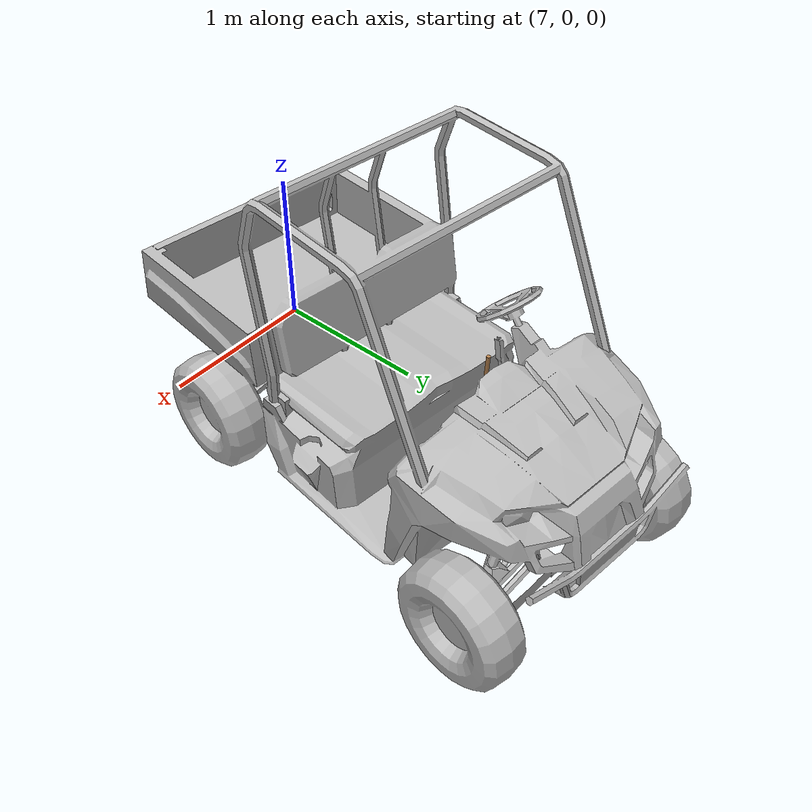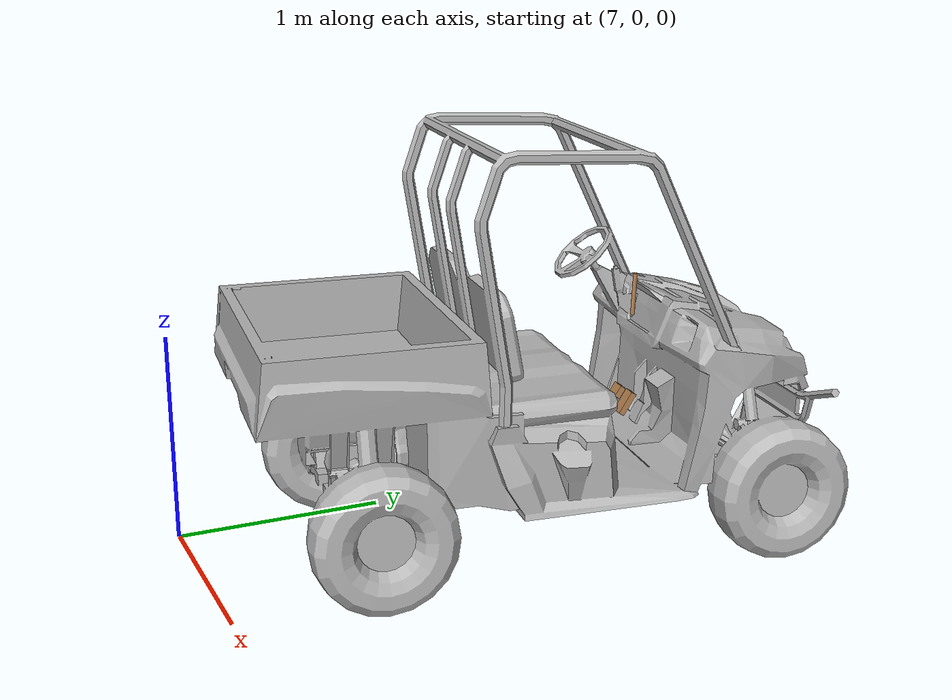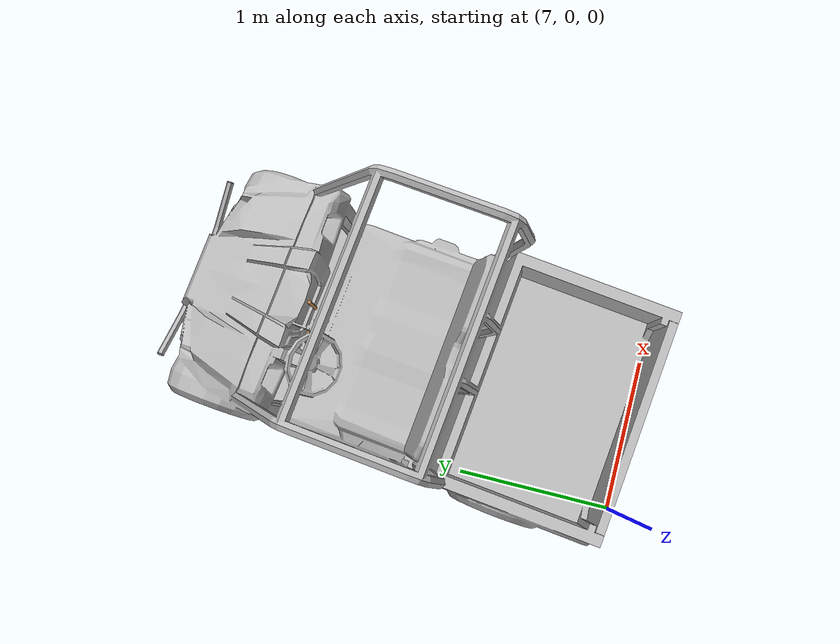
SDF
<sdf version="1.6">
 <world name="default">
  <model name="polaris_ranger_ev_clone_1_clone_clone_clone_clone">
   <static>true</static>
   <link name="chassis">
    <inertial>
     <mass>720</mass>
     <inertia><ixx>140</ixx><ixy>0</ixy><iyy>550</iyy><ixz>0</ixz><iyz>0</iyz><izz>550</izz></inertia>
    </inertial>
    <visual name="visual">
     <pose>0 0 0 0 0 -1.5708</pose>
     <geometry><mesh><uri>model://polaris_ranger_ev/meshes/polaris.dae</uri><scale>1 1 1</scale></mesh></geometry>
     <material>
      <script>
       <uri>model://polaris_ranger_ev/materials/scripts</uri>
       <uri>model://polaris_ranger_ev/materials/textures</uri>
       <name>Polaris/Diffuse</name>
      </script>
     </material>
    </visual>
    <collision name="chassis_bottom">
     <pose>0 0 0.35 0 -0 0</pose>
     <geometry><box><size>2 1 0.1</size></box></geometry>
    </collision>
    <collision name="cargo_bottom">
     <pose>-0.9 0 0.9 0 -0 0</pose>
     <geometry><box><size>0.9 1.2 0.01</size></box></geometry>
    </collision>
    <collision name="cargo_front">
     <pose>-0.45 0 1.025 0 -0 0</pose>
     <geometry><box><size>0.05 1.2 0.25</size></box></geometry>
    </collision>
    <collision name="cargo_back">
     <pose>-1.35 0 1.025 0 -0 0</pose>
     <geometry><box><size>0.05 1.2 0.25</size></box></geometry>
    </collision>
    <collision name="cargo_left">
     <pose>-0.9 0.6 1.025 0 -0 0</pose>
     <geometry><box><size>0.9 0.05 0.25</size></box></geometry>
    </collision>
    <collision name="cargo_right">
     <pose>-0.9 -0.6 1.025 0 -0 0</pose>
     <geometry><box><size>0.9 0.05 0.25</size></box></geometry>
    </collision>
    <collision name="seat">
     <pose>-0.1 0 0.625 0 -0 0</pose>
     <geometry><box><size>0.6 1 0.65</size></box></geometry>
    </collision>
    <collision name="seat_back">
     <pose>-0.3 0 1.125 0 -0.2 0</pose>
     <geometry><box><size>0.1 1 0.4</size></box></geometry>
    </collision>
    <collision name="engine">
     <pose>0.95 0 0.7 0 -0 0</pose>
     <geometry><box><size>0.58 1 0.8</size></box></geometry>
    </collision>
    <collision name="steering_column">
     <pose>0.525 0.3 1.025 0 -0.8 0</pose>
     <geometry><cylinder><radius>0.05</radius><length>0.45</length></cylinder></geometry>
    </collision>
   </link>
   <link name="rear_right_wheel">
    <pose>-0.85 -0.6 0.32 1.5708 -0 0</pose>
    <inertial>
     <mass>12</mass>
     <inertia><ixx>0.5</ixx><ixy>0</ixy><iyy>0.5</iyy><ixz>0</ixz><iyz>0</iyz><izz>1</izz></inertia>
    </inertial>
    <collision name="collision">
     <geometry><cylinder><radius>0.32</radius><length>0.23</length></cylinder></geometry>
     <surface>
      <friction><ode><mu>100000</mu><mu2>100000</mu2><slip1>0</slip1><slip2>0</slip2></ode></friction>
     </surface>
    </collision>
   </link>
   <joint name="rear_right_wheel_joint" type="revolute">
    <pose>0 0 -0.1 0 -0 0</pose>
    <child>rear_right_wheel</child>
    <parent>chassis</parent>
    <axis>
     <xyz>0 1 0</xyz>
     <use_parent_model_frame>1</use_parent_model_frame>
     <limit><lower>-1e+16</lower><upper>1e+16</upper></limit>
     <dynamics><spring_reference>0</spring_reference><spring_stiffness>0</spring_stiffness></dynamics>
    </axis>
    <physics><ode><limit><cfm>0</cfm><erp>0.9</erp></limit></ode></physics>
   </joint>
   <link name="rear_left_wheel">
    <pose>-0.85 0.6 0.32 1.5708 -0 0</pose>
    <inertial>
     <mass>12</mass>
     <inertia><ixx>0.5</ixx><ixy>0</ixy><iyy>0.5</iyy><ixz>0</ixz><iyz>0</iyz><izz>1</izz></inertia>
    </inertial>
    <collision name="collision">
     <geometry><cylinder><radius>0.32</radius><length>0.23</length></cylinder></geometry>
     <surface>
      <friction><ode><mu>100000</mu><mu2>100000</mu2><slip1>0</slip1><slip2>0</slip2></ode></friction>
     </surface>
    </collision>
   </link>
   <joint name="rear_left_wheel_joint" type="revolute">
    <child>rear_left_wheel</child>
    <parent>chassis</parent>
    <axis>
     <xyz>0 1 0</xyz>
     <use_parent_model_frame>1</use_parent_model_frame>
     <limit><lower>-1e+16</lower><upper>1e+16</upper></limit>
     <dynamics><spring_reference>0</spring_reference><spring_stiffness>0</spring_stiffness></dynamics>
    </axis>
    <physics><ode><limit><cfm>0</cfm><erp>0.9</erp></limit></ode></physics>
   </joint>
   <link name="front_right_wheel">
    <pose>1.03 -0.6 0.32 1.5708 -0 0</pose>
    <inertial>
     <mass>12</mass>
     <inertia><ixx>0.5</ixx><ixy>0</ixy><iyy>0.5</iyy><ixz>0</ixz><iyz>0</iyz><izz>1</izz></inertia>
    </inertial>
    <collision name="collision">
     <geometry><cylinder><radius>0.32</radius><length>0.23</length></cylinder></geometry>
     <surface>
      <friction><ode><mu>100000</mu><mu2>100000</mu2><slip1>0</slip1><slip2>0</slip2></ode></friction>
     </surface>
    </collision>
   </link>
   <link name="front_right_wheel_steering_block">
    <pose>1.03 -0.5 0.32 1.5708 -0 0</pose>
    <inertial>
     <mass>1</mass>
     <inertia><ixx>1</ixx><ixy>0</ixy><iyy>1</iyy><ixz>0</ixz><iyz>0</iyz><izz>1</izz></inertia>
    </inertial>
    <collision name="collision">
     <geometry><cylinder><radius>0.05</radius><length>0.01</length></cylinder></geometry>
    </collision>
   </link>
   <joint name="front_right_steering_joint" type="revolute">
    <child>front_right_wheel_steering_block</child>
    <parent>chassis</parent>
    <axis>
     <xyz>0 0 1</xyz>
     <limit><lower>-1</lower><upper>1</upper></limit>
     <use_parent_model_frame>1</use_parent_model_frame>
     <dynamics><spring_reference>0</spring_reference><spring_stiffness>0</spring_stiffness></dynamics>
    </axis>
    <physics><ode><limit><cfm>0</cfm><erp>0.9</erp></limit></ode></physics>
   </joint>
   <joint name="front_right_wheel_joint" type="revolute">
    <child>front_right_wheel</child>
    <parent>front_right_wheel_steering_block</parent>
    <axis>
     <xyz>0 1 0</xyz>
     <use_parent_model_frame>1</use_parent_model_frame>
     <limit><lower>-1e+16</lower><upper>1e+16</upper></limit>
     <dynamics><spring_reference>0</spring_reference><spring_stiffness>0</spring_stiffness></dynamics>
    </axis>
    <physics><ode><limit><cfm>0</cfm><erp>0.9</erp></limit></ode></physics>
   </joint>
   <link name="front_left_wheel">
    <pose>1.03 0.6 0.32 1.5708 -0 0</pose>
    <inertial>
     <mass>12</mass>
     <inertia><ixx>0.5</ixx><ixy>0</ixy><iyy>0.5</iyy><ixz>0</ixz><iyz>0</iyz><izz>1</izz></inertia>
    </inertial>
    <collision name="collision">
     <geometry><cylinder><radius>0.32</radius><length>0.23</length></cylinder></geometry>
     <surface>
      <friction><ode><mu>100000</mu><mu2>100000</mu2><slip1>0</slip1><slip2>0</slip2></ode></friction>
     </surface>
    </collision>
   </link>
   <link name="front_left_wheel_steering_block">
    <pose>1.03 0.5 0.32 1.5708 -0 0</pose>
    <inertial>
     <mass>1</mass>
     <inertia><ixx>1</ixx><ixy>0</ixy><iyy>1</iyy><ixz>0</ixz><iyz>0</iyz><izz>1</izz></inertia>
    </inertial>
    <collision name="collision">
     <geometry><cylinder><radius>0.05</radius><length>0.01</length></cylinder></geometry>
    </collision>
   </link>
   <joint name="front_left_steering_joint" type="revolute">
    <child>front_left_wheel_steering_block</child>
    <parent>chassis</parent>
    <axis>
     <xyz>0 0 1</xyz>
     <limit><lower>-1</lower><upper>1</upper></limit>
     <use_parent_model_frame>1</use_parent_model_frame>
     <dynamics><spring_reference>0</spring_reference><spring_stiffness>0</spring_stiffness></dynamics>
    </axis>
    <physics><ode><limit><cfm>0</cfm><erp>0.9</erp></limit></ode></physics>
   </joint>
   <joint name="front_left_wheel_joint" type="revolute">
    <child>front_left_wheel</child>
    <parent>front_left_wheel_steering_block</parent>
    <axis>
     <xyz>0 1 0</xyz>
     <use_parent_model_frame>1</use_parent_model_frame>
     <limit><lower>-1e+16</lower><upper>1e+16</upper></limit>
     <dynamics><spring_reference>0</spring_reference><spring_stiffness>0</spring_stiffness></dynamics>
    </axis>
    <physics><ode><limit><cfm>0</cfm><erp>0.9</erp></limit></ode></physics>
   </joint>
   <link name="gas_pedal">
    <pose>0.53 0.14 0.56 0 -1 0</pose>
    <gravity>0</gravity>
    <inertial>
     <mass>0.1</mass>
     <inertia><ixx>0.01</ixx><ixy>0</ixy><ixz>0</ixz><iyy>0.01</iyy><iyz>0</iyz><izz>0.01</izz></inertia>
    </inertial>
    <collision name="gas_pedal_collision"><geometry><box><size>0.12 0.07 0.03</size></box></geometry></collision>
    <visual name="gas_pedal_visual">
     <geometry><box><size>0.12 0.07 0.03</size></box></geometry>
     <material>
      <script><uri>file://media/materials/scripts/gazebo.material</uri><name>Gazebo/Wood</name></script>
      <ambient>0.2 0.2 0.2 1</ambient>
      <diffuse>0.2 0.2 0.2 1</diffuse>
      <specular>0.2 0.2 0.2 1</specular>
      <emissive>0.5 0.5 0.5 1</emissive>
     </material>
    </visual>
   </link>
   <link name="brake_pedal">
    <gravity>0</gravity>
    <pose>0.54 0.27 0.58 0 -1 0</pose>
    <inertial>
     <mass>0.1</mass>
     <inertia><ixx>0.01</ixx><ixy>0</ixy><ixz>0</ixz><iyy>0.01</iyy><iyz>0</iyz><izz>0.01</izz></inertia>
    </inertial>
    <collision name="brake_pedal_collision">
     <geometry><box><size>0.06 0.08 0.03</size></box></geometry>
    </collision>
    <visual name="brake_pedal_visual">
     <geometry><box><size>0.06 0.08 0.03</size></box></geometry>
     <material>
      <script><uri>file://media/materials/scripts/gazebo.material</uri><name>Gazebo/Wood</name></script>
      <ambient>0.2 0.2 0.2 1</ambient>
      <diffuse>0.2 0.2 0.2 1</diffuse>
      <specular>0.2 0.2 0.2 1</specular>
      <emissive>0.5 0.5 0.5 1</emissive>
     </material>
    </visual>
   </link>
   <link name="steering_wheel">
    <pose>0.37 0.3 1.2 0 -0.8 0</pose>
    <inertial>
     <mass>1</mass>
     <inertia><ixx>0.1</ixx><ixy>0</ixy><ixz>0</ixz><iyy>0.1</iyy><iyz>0</iyz><izz>1</izz></inertia>
    </inertial>
    <collision name="steering_wheel_post_left">
     <pose>0 0.08 0 1.5708 -0 0</pose>
     <geometry><cylinder><radius>0.02</radius><length>0.15</length></cylinder></geometry>
    </collision>
    <collision name="steering_wheel_post_right">
     <pose>0 -0.08 0 1.5708 -0 0</pose>
     <geometry><cylinder><radius>0.02</radius><length>0.15</length></cylinder></geometry>
    </collision>
    <collision name="steering_wheel_post_middle">
     <pose>-0.08 0 0 3.14159 1.57079 3.14159</pose>
     <geometry><cylinder><radius>0.02</radius><length>0.15</length></cylinder></geometry>
    </collision>
    <collision name="collision00">
     <pose>0.15 0 0 3.14159 1.57079 -1.57079</pose>
     <geometry><cylinder><length>0.105066</length><radius>0.01</radius></cylinder></geometry>
    </collision>
    <collision name="collision01">
     <pose>0.121353 0.088168 0 3.14159 1.57079 -0.942483</pose>
     <geometry><cylinder><length>0.105066</length><radius>0.01</radius></cylinder></geometry>
    </collision>
    <collision name="collision02">
     <pose>0.046353 0.142658 0 3.14159 1.57079 -0.314163</pose>
     <geometry><cylinder><length>0.105066</length><radius>0.01</radius></cylinder></geometry>
    </collision>
    <collision name="collision03">
     <pose>-0.046353 0.142658 0 3.14159 1.57079 0.314163</pose>
     <geometry><cylinder><length>0.105066</length><radius>0.01</radius></cylinder></geometry>
    </collision>
    <collision name="collision04">
     <pose>-0.121353 0.088168 0 -3.14159 1.57079 0.942483</pose>
     <geometry><cylinder><length>0.105066</length><radius>0.01</radius></cylinder></geometry>
    </collision>
    <collision name="collision05">
     <pose>-0.15 0 0 -3.14159 1.57079 1.57079</pose>
     <geometry><cylinder><length>0.105066</length><radius>0.01</radius></cylinder></geometry>
    </collision>
    <collision name="collision06">
     <pose>-0.121353 -0.088168 0 3.14159 1.57079 2.19912</pose>
     <geometry><cylinder><length>0.105066</length><radius>0.01</radius></cylinder></geometry>
    </collision>
    <collision name="collision07">
     <pose>-0.046353 -0.142658 0 -3.14159 1.57079 2.82743</pose>
     <geometry><cylinder><length>0.105066</length><radius>0.01</radius></cylinder></geometry>
    </collision>
    <collision name="collision08">
     <pose>0.046353 -0.142658 0 3.14159 1.57079 -2.82743</pose>
     <geometry><cylinder><length>0.105066</length><radius>0.01</radius></cylinder></geometry>
    </collision>
    <collision name="collision09">
     <pose>0.121353 -0.088168 0 -3.14159 1.57079 -2.19911</pose>
     <geometry><cylinder><length>0.105066</length><radius>0.01</radius></cylinder></geometry>
    </collision>
   </link>
   <link name="hand_brake">
    <pose>0.5 0 1.05 3.14159 -0.058407 3.14159</pose>
    <inertial>
     <mass>1</mass>
     <pose>0 0 -0.15 0 -0 0</pose>
     <inertia><ixx>0.1</ixx><ixy>0</ixy><ixz>0</ixz><iyy>0.1</iyy><iyz>0</iyz><izz>1</izz></inertia>
    </inertial>
    <collision name="hand_brake_collision">
     <pose>0 0 -0.1 0 -0 0</pose>
     <geometry><cylinder><radius>0.01</radius><length>0.2</length></cylinder></geometry>
    </collision>
    <visual name="hand_brake_visual">
     <pose>0 0 -0.1 0 -0 0</pose>
     <geometry><cylinder><radius>0.01</radius><length>0.2</length></cylinder></geometry>
     <material>
      <script><uri>file://media/materials/scripts/gazebo.material</uri><name>Gazebo/Wood</name></script>
     </material>
    </visual>
   </link>
   <joint name="gas_joint" type="prismatic">
    <parent>chassis</parent>
    <child>gas_pedal</child>
    <axis>
     <xyz>1 0 -1</xyz>
     <limit><lower>0</lower><upper>0.15</upper></limit>
     <use_parent_model_frame>1</use_parent_model_frame>
     <dynamics><spring_reference>0</spring_reference><spring_stiffness>0</spring_stiffness></dynamics>
    </axis>
   </joint>
   <joint name="brake_joint" type="prismatic">
    <parent>chassis</parent>
    <child>brake_pedal</child>
    <axis>
     <xyz>1 0 -0.6</xyz>
     <limit><lower>0</lower><upper>0.15</upper></limit>
     <use_parent_model_frame>1</use_parent_model_frame>
     <dynamics><spring_reference>0</spring_reference><spring_stiffness>0</spring_stiffness></dynamics>
    </axis>
   </joint>
   <joint name="steering_joint" type="revolute">
    <pose>0 0 0 1.5708 -0.8 0</pose>
    <parent>chassis</parent>
    <child>steering_wheel</child>
    <axis>
     <xyz>-1 0 1.023</xyz>
     <limit><lower>-7.853</lower><upper>7.853</upper></limit>
     <use_parent_model_frame>1</use_parent_model_frame>
     <dynamics><spring_reference>0</spring_reference><spring_stiffness>0</spring_stiffness></dynamics>
    </axis>
   </joint>
   <joint name="hand_brake_joint" type="revolute">
    <parent>chassis</parent>
    <child>hand_brake</child>
    <axis>
     <xyz>0 -1 0</xyz>
     <limit><lower>0</lower><upper>0.6</upper></limit>
     <use_parent_model_frame>1</use_parent_model_frame>
     <dynamics><spring_reference>0</spring_reference><spring_stiffness>0</spring_stiffness></dynamics>
    </axis>
   </joint>
   <pose>7.66136 1.57092 -5.4e-05 -9e-06 4.9e-05 1.45521</pose>
  </model>
 </world>
</sdf>
